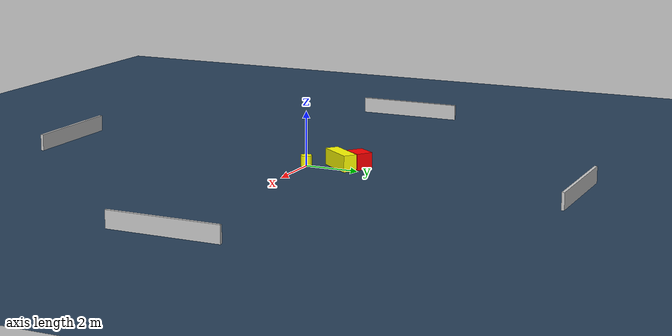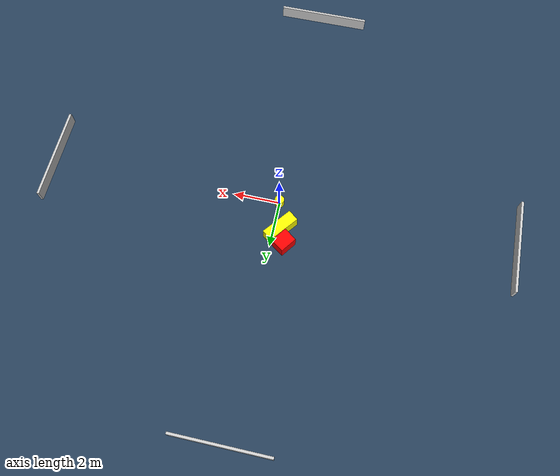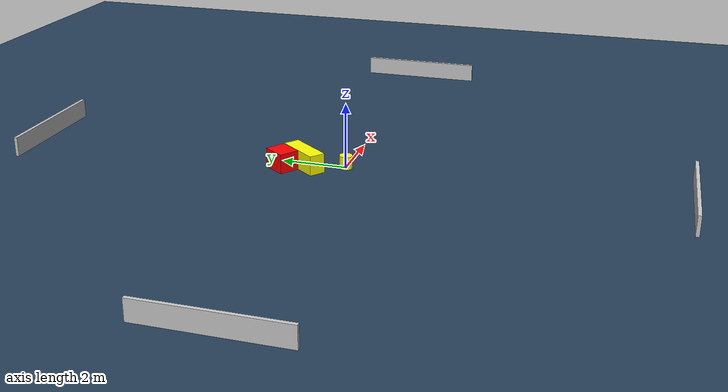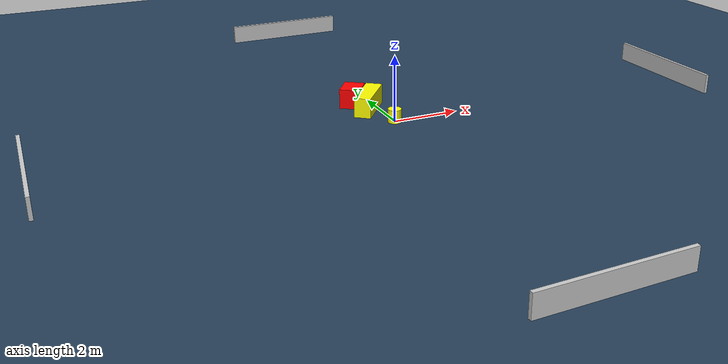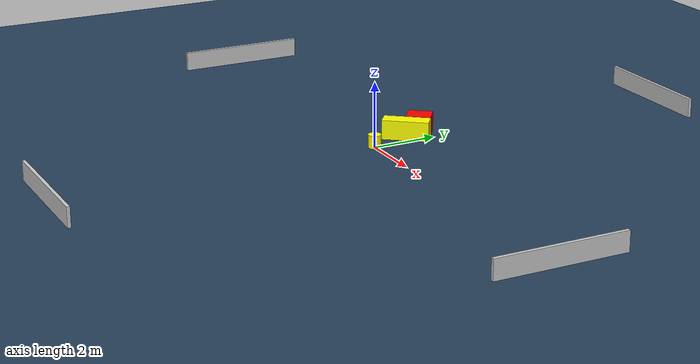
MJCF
<?xml version="1.0" ?>
<mujoco model="generated_environment">
  <option timestep="0.01" integrator="RK4" cone="elliptic"/>
  <default>
    <geom density="1"/>
  </default>
  <asset>
    <texture builtin="gradient" height="3072" name="skybox" rgb1="0.3 0.5 0.7" rgb2="0 0 0" type="skybox" width="512"/>
    <texture builtin="checker" height="300" name="groundplane" rgb1="0.2 0.3 0.4" rgb2="0.1 0.2 0.3" type="2d" width="300"/>
    <material name="groundplane" reflectance="0.2" texrepeat="5 5" texture="groundplane"/>
  </asset>
  <worldbody>
    <light dir="0 0 -1" directional="true" pos="0 0 1.5"/>
    <geom condim="3" friction="0.5 0.005 0.001" material="groundplane" name="floor" pos="0 0 0" size="0 0 0.05" type="plane"/>
    <body name="walls">
      <geom name="wall_1" condim="4" pos="-10.0 0.0 0.3" rgba="0.800000011920929 0.800000011920929 0.800000011920929 1.0" size="0.05 2.0 0.3" type="box"/>
      <geom name="wall_2" condim="4" pos="10.0 0.0 0.3" rgba="0.800000011920929 0.800000011920929 0.800000011920929 1.0" size="0.05 2.0 0.3" type="box"/>
      <geom name="wall_3" condim="4" pos="0.0 -10.0 0.3" rgba="0.800000011920929 0.800000011920929 0.800000011920929 1.0" size="2.0 0.05 0.3" type="box"/>
      <geom name="wall_4" condim="4" pos="0.0 10.0 0.3" rgba="0.800000011920929 0.800000011920929 0.800000011920929 1.0" size="2.0 0.05 0.3" type="box"/>
    </body>
    <body name="robot">
      <joint name="joint_x" type="slide" pos="0 0 0" axis="1 0 0"/>
      <joint name="joint_y" type="slide" pos="0 0 0" axis="0 1 0"/>
      <geom name="robot" type="cylinder" pos="0.0 0.0 0.2" size="0.2 0.2 0.0" mass="5.0" friction="1.0 0.005 0.0001" condim="4" rgba="1.0 1.0 0.0 1.0"/>
    </body>
    <body name="obstacle_1_movable">
      <geom name="obstacle_1_movable" condim="4" pos="-0.29556637496422183 1.219871065253931 0.3" euler="0 0 231.68021041748224" friction="0.0 0.005 0.001" rgba="1.0 1.0 0.0 1.0" size="0.712820449361331 0.24985017084018185 0.3" type="box" mass="0.1"/>
      <joint type="free"/>
    </body>
    <body name="obstacle_2_static">
      <geom name="obstacle_2_static" condim="4" pos="-0.5691753755609157 1.8174051603844812 0.3" euler="0 0 324.1744455101546" friction="0.0 0.005 0.001" rgba="1.0 0.0 0.0 1.0" size="0.3123839717691959 0.37600666977504116 0.3" type="box"/>
    </body>
  </worldbody>
  <actuator>
    <motor name="actuator_x" joint="joint_x" gear="1" ctrlrange="-1 1"/>
    <motor name="actuator_y" joint="joint_y" gear="1" ctrlrange="-1 1"/>
  </actuator>
</mujoco>
